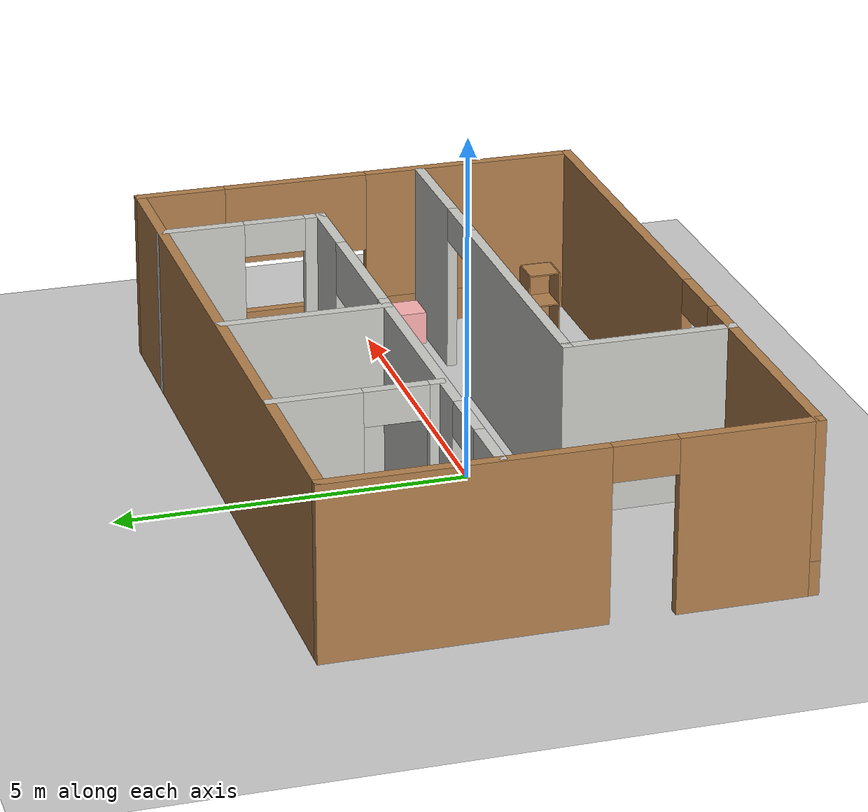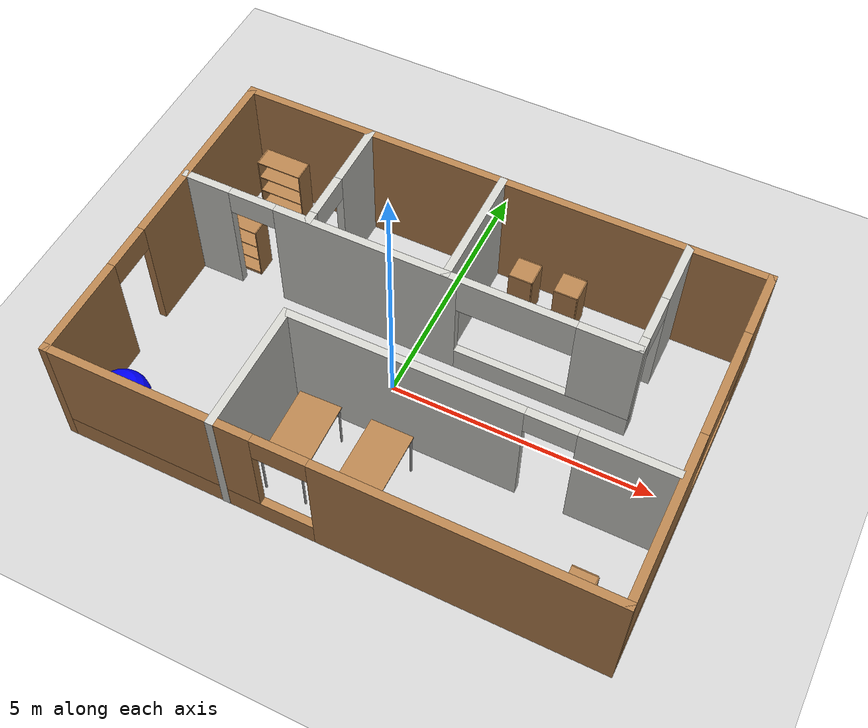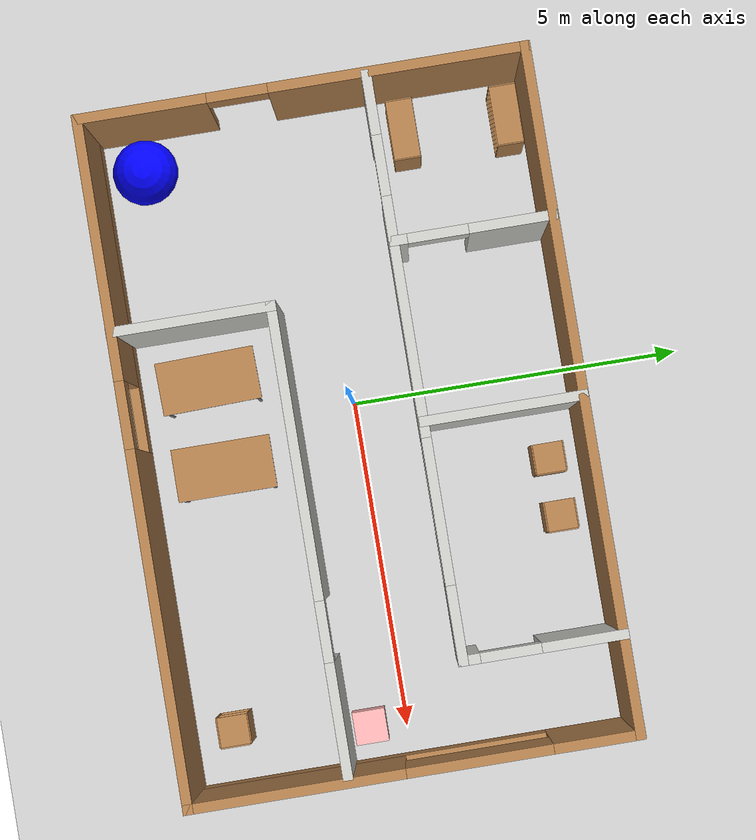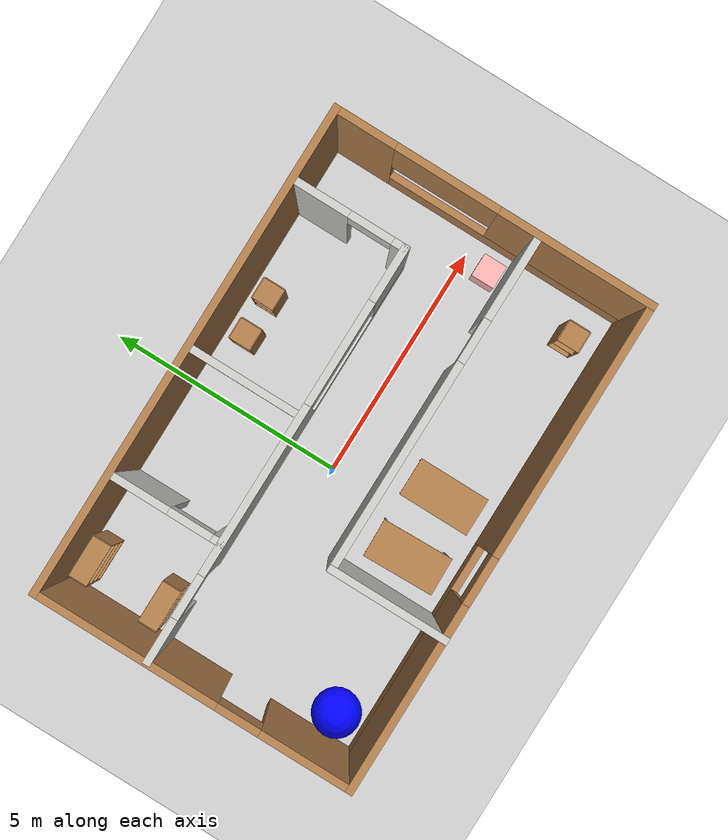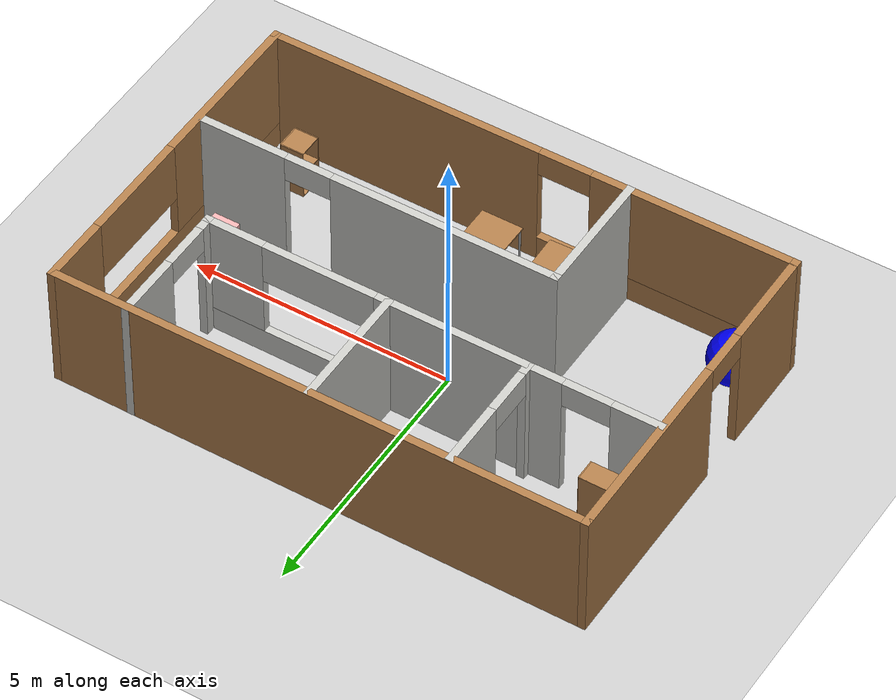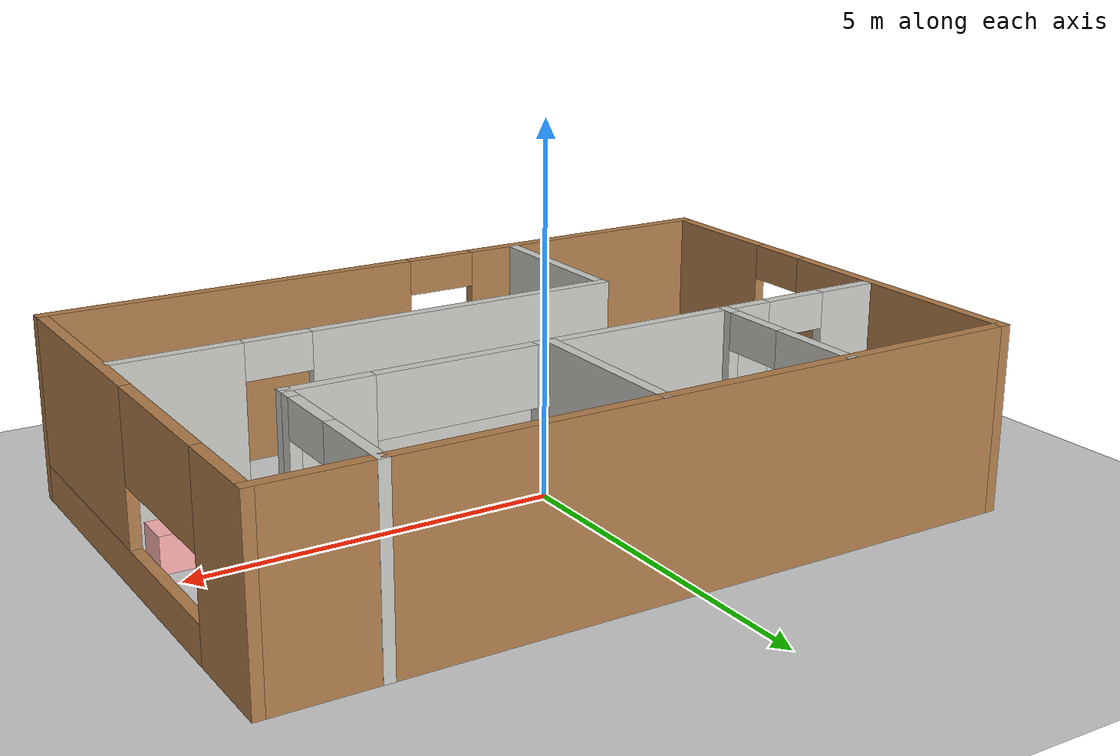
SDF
<sdf version="1.6">
 <world name="default">
  <light name="sun" type="directional">
   <pose>0 0 10 0 -0 0</pose>
   <diffuse>0.8 0.8 0.8 1</diffuse>
   <specular>0.2 0.2 0.2 1</specular>
   <attenuation>
    <range>1000</range>
    <constant>0.9</constant>
    <linear>0.01</linear>
    <quadratic>0.001</quadratic>
   </attenuation>
   <direction>-0.5 0.1 -0.9</direction>
  </light>
  <model name="ground_plane">
   <static>1</static>
   <link name="link">
    <collision name="collision">
     <geometry><plane><normal>0 0 1</normal><size>100 100</size></plane></geometry>
     <surface>
      <contact><collide_bitmask>65535</collide_bitmask></contact>
      <friction><ode><mu>100</mu><mu2>50</mu2></ode></friction>
     </surface>
    </collision>
    <visual name="visual">
     <cast_shadows>0</cast_shadows>
     <geometry><plane><normal>0 0 1</normal><size>100 100</size></plane></geometry>
     <material>
      <script><uri>file://media/materials/scripts/gazebo.material</uri><name>Gazebo/Grey</name></script>
     </material>
    </visual>
   </link>
  </model>
  <gravity>0 0 -9.8</gravity>
  <magnetic_field>6e-06 2.3e-05 -4.2e-05</magnetic_field>
  <atmosphere type="adiabatic"/>
  <physics name="default_physics" default="0" type="ode">
   <max_step_size>0.001</max_step_size>
   <real_time_factor>1</real_time_factor>
   <real_time_update_rate>1000</real_time_update_rate>
  </physics>
  <scene><ambient>0.4 0.4 0.4 1</ambient><background>0.7 0.7 0.7 1</background><shadows>1</shadows></scene>
  <spherical_coordinates>
   <surface_model>EARTH_WGS84</surface_model>
   <latitude_deg>0</latitude_deg>
   <longitude_deg>0</longitude_deg>
   <elevation>0</elevation>
   <heading_deg>0</heading_deg>
  </spherical_coordinates>
  <model name="new_home">
   <pose>0.439115 0.0268 0 0 -0 0</pose>
   <link name="Wall_0">
    <collision name="Wall_0_Collision">
     <geometry><box><size>10.25 0.15 2.5</size></box></geometry>
     <pose>0 0 1.25 0 -0 0</pose>
    </collision>
    <visual name="Wall_0_Visual">
     <pose>0 0 1.25 0 -0 0</pose>
     <geometry><box><size>10.25 0.15 2.5</size></box></geometry>
     <material>
      <script><uri>file://media/materials/scripts/gazebo.material</uri><name>Gazebo/Wood</name></script>
      <ambient>1 1 1 1</ambient>
     </material>
     <meta><layer>0</layer></meta>
    </visual>
    <pose>0 3.30103 0 0 -0 0</pose>
   </link>
   <link name="Wall_1">
    <pose>5.05 0.001029 0 0 0 -1.5708</pose>
    <visual name="Wall_1_Visual_0">
     <pose>-2.70664 0 1.25 0 -0 0</pose>
     <geometry><box><size>1.33673 0.15 2.5</size></box></geometry>
     <material>
      <script><uri>file://media/materials/scripts/gazebo.material</uri><name>Gazebo/Wood</name></script>
      <ambient>1 1 1 1</ambient>
     </material>
     <meta><layer>0</layer></meta>
    </visual>
    <collision name="Wall_1_Collision_0">
     <geometry><box><size>1.33673 0.15 2.5</size></box></geometry>
     <pose>-2.70664 0 1.25 0 -0 0</pose>
    </collision>
    <visual name="Wall_1_Visual_1">
     <pose>0.668364 0 0.25 0 -0 0</pose>
     <geometry><box><size>5.41327 0.15 0.5</size></box></geometry>
     <material>
      <script><uri>file://media/materials/scripts/gazebo.material</uri><name>Gazebo/Wood</name></script>
      <ambient>1 1 1 1</ambient>
     </material>
     <meta><layer>0</layer></meta>
    </visual>
    <collision name="Wall_1_Collision_1">
     <geometry><box><size>5.41327 0.15 0.5</size></box></geometry>
     <pose>0.668364 0 0.25 0 -0 0</pose>
    </collision>
    <visual name="Wall_1_Visual_2">
     <pose>1.74555 0 1.5 0 -0 0</pose>
     <geometry><box><size>3.25889 0.15 2</size></box></geometry>
     <material>
      <script><uri>file://media/materials/scripts/gazebo.material</uri><name>Gazebo/Wood</name></script>
      <ambient>1 1 1 1</ambient>
     </material>
     <meta><layer>0</layer></meta>
    </visual>
    <collision name="Wall_1_Collision_2">
     <geometry><box><size>3.25889 0.15 2</size></box></geometry>
     <pose>1.74555 0 1.5 0 -0 0</pose>
    </collision>
    <visual name="Wall_1_Visual_3">
     <pose>-0.961081 0 1.9 0 -0 0</pose>
     <geometry><box><size>2.15438 0.15 1.2</size></box></geometry>
     <material>
      <script><uri>file://media/materials/scripts/gazebo.material</uri><name>Gazebo/Wood</name></script>
      <ambient>1 1 1 1</ambient>
     </material>
     <meta><layer>0</layer></meta>
    </visual>
    <collision name="Wall_1_Collision_3">
     <geometry><box><size>2.15438 0.15 1.2</size></box></geometry>
     <pose>-0.961081 0 1.9 0 -0 0</pose>
    </collision>
   </link>
   <link name="Wall_11">
    <pose>-2.55612 2.1252 0 0 0 -1.5708</pose>
    <visual name="Wall_11_Visual_0">
     <pose>-0.583962 0 1.25 0 -0 0</pose>
     <geometry><box><size>1.31008 0.15 2.5</size></box></geometry>
     <material>
      <script><uri>file://media/materials/scripts/gazebo.material</uri><name>Gazebo/CeilingTiled</name></script>
      <ambient>1 1 1 1</ambient>
     </material>
     <meta><layer>0</layer></meta>
    </visual>
    <collision name="Wall_11_Collision_0">
     <geometry><box><size>1.31008 0.15 2.5</size></box></geometry>
     <pose>-0.583962 0 1.25 0 -0 0</pose>
    </collision>
    <visual name="Wall_11_Visual_1">
     <pose>1.10504 0 1.25 0 -0 0</pose>
     <geometry><box><size>0.267924 0.15 2.5</size></box></geometry>
     <material>
      <script><uri>file://media/materials/scripts/gazebo.material</uri><name>Gazebo/CeilingTiled</name></script>
      <ambient>1 1 1 1</ambient>
     </material>
     <meta><layer>0</layer></meta>
    </visual>
    <collision name="Wall_11_Collision_1">
     <geometry><box><size>0.267924 0.15 2.5</size></box></geometry>
     <pose>1.10504 0 1.25 0 -0 0</pose>
    </collision>
    <visual name="Wall_11_Visual_2">
     <pose>0.521076 0 2.25 0 -0 0</pose>
     <geometry><box><size>0.9 0.15 0.5</size></box></geometry>
     <material>
      <script><uri>file://media/materials/scripts/gazebo.material</uri><name>Gazebo/CeilingTiled</name></script>
      <ambient>1 1 1 1</ambient>
     </material>
     <meta><layer>0</layer></meta>
    </visual>
    <collision name="Wall_11_Collision_2">
     <geometry><box><size>0.9 0.15 0.5</size></box></geometry>
     <pose>0.521076 0 2.25 0 -0 0</pose>
    </collision>
   </link>
   <link name="Wall_13">
    <collision name="Wall_13_Collision">
     <geometry><box><size>2.5 0.15 2.5</size></box></geometry>
     <pose>0 0 1.25 0 -0 0</pose>
    </collision>
    <visual name="Wall_13_Visual">
     <pose>0 0 1.25 0 -0 0</pose>
     <geometry><box><size>2.5 0.15 2.5</size></box></geometry>
     <material>
      <script><uri>file://media/materials/scripts/gazebo.material</uri><name>Gazebo/CeilingTiled</name></script>
      <ambient>1 1 1 1</ambient>
     </material>
     <meta><layer>0</layer></meta>
    </visual>
    <pose>-1.91259 -2.12832 0 0 -0 1.5708</pose>
   </link>
   <link name="Wall_14">
    <pose>1.51241 -0.953315 0 0 -0 0</pose>
    <visual name="Wall_14_Visual_0">
     <pose>-1.30414 0 1.25 0 -0 0</pose>
     <geometry><box><size>4.39172 0.15 2.5</size></box></geometry>
     <material>
      <script><uri>file://media/materials/scripts/gazebo.material</uri><name>Gazebo/CeilingTiled</name></script>
      <ambient>1 1 1 1</ambient>
     </material>
     <meta><layer>0</layer></meta>
    </visual>
    <collision name="Wall_14_Collision_0">
     <geometry><box><size>4.39172 0.15 2.5</size></box></geometry>
     <pose>-1.30414 0 1.25 0 -0 0</pose>
    </collision>
    <visual name="Wall_14_Visual_1">
     <pose>2.64586 0 1.25 0 -0 0</pose>
     <geometry><box><size>1.70828 0.15 2.5</size></box></geometry>
     <material>
      <script><uri>file://media/materials/scripts/gazebo.material</uri><name>Gazebo/CeilingTiled</name></script>
      <ambient>1 1 1 1</ambient>
     </material>
     <meta><layer>0</layer></meta>
    </visual>
    <collision name="Wall_14_Collision_1">
     <geometry><box><size>1.70828 0.15 2.5</size></box></geometry>
     <pose>2.64586 0 1.25 0 -0 0</pose>
    </collision>
    <visual name="Wall_14_Visual_2">
     <pose>1.34172 0 2.25 0 -0 0</pose>
     <geometry><box><size>0.9 0.15 0.5</size></box></geometry>
     <material>
      <script><uri>file://media/materials/scripts/gazebo.material</uri><name>Gazebo/CeilingTiled</name></script>
      <ambient>1 1 1 1</ambient>
     </material>
     <meta><layer>0</layer></meta>
    </visual>
    <collision name="Wall_14_Collision_2">
     <geometry><box><size>0.9 0.15 0.5</size></box></geometry>
     <pose>1.34172 0 2.25 0 -0 0</pose>
    </collision>
   </link>
   <link name="Wall_16">
    <pose>-0.708317 0.953315 0 0 -0 0</pose>
    <visual name="Wall_16_Visual_0">
     <pose>-3.8941 0 1.25 0 -0 0</pose>
     <geometry><box><size>0.961793 0.15 2.5</size></box></geometry>
     <material>
      <script><uri>file://media/materials/scripts/gazebo.material</uri><name>Gazebo/CeilingTiled</name></script>
      <ambient>1 1 1 1</ambient>
     </material>
     <meta><layer>0</layer></meta>
    </visual>
    <collision name="Wall_16_Collision_0">
     <geometry><box><size>0.961793 0.15 2.5</size></box></geometry>
     <pose>-3.8941 0 1.25 0 -0 0</pose>
    </collision>
    <visual name="Wall_16_Visual_1">
     <pose>-0.736766 0 1.25 0 -0 0</pose>
     <geometry><box><size>3.55288 0.15 2.5</size></box></geometry>
     <material>
      <script><uri>file://media/materials/scripts/gazebo.material</uri><name>Gazebo/CeilingTiled</name></script>
      <ambient>1 1 1 1</ambient>
     </material>
     <meta><layer>0</layer></meta>
    </visual>
    <collision name="Wall_16_Collision_1">
     <geometry><box><size>3.55288 0.15 2.5</size></box></geometry>
     <pose>-0.736766 0 1.25 0 -0 0</pose>
    </collision>
    <visual name="Wall_16_Visual_2">
     <pose>2.70734 0 0.25 0 -0 0</pose>
     <geometry><box><size>3.33533 0.15 0.5</size></box></geometry>
     <material>
      <script><uri>file://media/materials/scripts/gazebo.material</uri><name>Gazebo/CeilingTiled</name></script>
      <ambient>1 1 1 1</ambient>
     </material>
     <meta><layer>0</layer></meta>
    </visual>
    <collision name="Wall_16_Collision_2">
     <geometry><box><size>3.33533 0.15 0.5</size></box></geometry>
     <pose>2.70734 0 0.25 0 -0 0</pose>
    </collision>
    <visual name="Wall_16_Visual_3">
     <pose>3.78779 0 1.5 0 -0 0</pose>
     <geometry><box><size>1.17443 0.15 2</size></box></geometry>
     <material>
      <script><uri>file://media/materials/scripts/gazebo.material</uri><name>Gazebo/CeilingTiled</name></script>
      <ambient>1 1 1 1</ambient>
     </material>
     <meta><layer>0</layer></meta>
    </visual>
    <collision name="Wall_16_Collision_3">
     <geometry><box><size>1.17443 0.15 2</size></box></geometry>
     <pose>3.78779 0 1.5 0 -0 0</pose>
    </collision>
    <visual name="Wall_16_Visual_4">
     <pose>2.12012 0 2.1 0 -0 0</pose>
     <geometry><box><size>2.1609 0.15 0.8</size></box></geometry>
     <material>
      <script><uri>file://media/materials/scripts/gazebo.material</uri><name>Gazebo/CeilingTiled</name></script>
      <ambient>1 1 1 1</ambient>
     </material>
     <meta><layer>0</layer></meta>
    </visual>
    <collision name="Wall_16_Collision_4">
     <geometry><box><size>2.1609 0.15 0.8</size></box></geometry>
     <pose>2.12012 0 2.1 0 -0 0</pose>
    </collision>
    <visual name="Wall_16_Visual_5">
     <pose>-2.96321 0 2.25 0 -0 0</pose>
     <geometry><box><size>0.9 0.15 0.5</size></box></geometry>
     <material>
      <script><uri>file://media/materials/scripts/gazebo.material</uri><name>Gazebo/CeilingTiled</name></script>
      <ambient>1 1 1 1</ambient>
     </material>
     <meta><layer>0</layer></meta>
    </visual>
    <collision name="Wall_16_Collision_5">
     <geometry><box><size>0.9 0.15 0.5</size></box></geometry>
     <pose>-2.96321 0 2.25 0 -0 0</pose>
    </collision>
   </link>
   <link name="Wall_17">
    <pose>3.59168 2.12832 0 0 -0 1.5708</pose>
    <visual name="Wall_17_Visual_0">
     <pose>-1.08571 0 1.25 0 -0 0</pose>
     <geometry><box><size>0.328575 0.15 2.5</size></box></geometry>
     <material>
      <script><uri>file://media/materials/scripts/gazebo.material</uri><name>Gazebo/CeilingTiled</name></script>
      <ambient>1 1 1 1</ambient>
     </material>
     <meta><layer>0</layer></meta>
    </visual>
    <collision name="Wall_17_Collision_0">
     <geometry><box><size>0.328575 0.15 2.5</size></box></geometry>
     <pose>-1.08571 0 1.25 0 -0 0</pose>
    </collision>
    <visual name="Wall_17_Visual_1">
     <pose>0.614288 0 1.25 0 -0 0</pose>
     <geometry><box><size>1.27143 0.15 2.5</size></box></geometry>
     <material>
      <script><uri>file://media/materials/scripts/gazebo.material</uri><name>Gazebo/CeilingTiled</name></script>
      <ambient>1 1 1 1</ambient>
     </material>
     <meta><layer>0</layer></meta>
    </visual>
    <collision name="Wall_17_Collision_1">
     <geometry><box><size>1.27143 0.15 2.5</size></box></geometry>
     <pose>0.614288 0 1.25 0 -0 0</pose>
    </collision>
    <visual name="Wall_17_Visual_2">
     <pose>-0.471425 0 2.25 0 -0 0</pose>
     <geometry><box><size>0.9 0.15 0.5</size></box></geometry>
     <material>
      <script><uri>file://media/materials/scripts/gazebo.material</uri><name>Gazebo/CeilingTiled</name></script>
      <ambient>1 1 1 1</ambient>
     </material>
     <meta><layer>0</layer></meta>
    </visual>
    <collision name="Wall_17_Collision_2">
     <geometry><box><size>0.9 0.15 0.5</size></box></geometry>
     <pose>-0.471425 0 2.25 0 -0 0</pose>
    </collision>
   </link>
   <link name="Wall_2">
    <pose>0 -3.29897 0 0 -0 3.14159</pose>
    <visual name="Wall_2_Visual_0">
     <pose>-2.46304 0 1.25 0 -0 0</pose>
     <geometry><box><size>5.32392 0.15 2.5</size></box></geometry>
     <material>
      <script><uri>file://media/materials/scripts/gazebo.material</uri><name>Gazebo/Wood</name></script>
      <ambient>1 1 1 1</ambient>
     </material>
     <meta><layer>0</layer></meta>
    </visual>
    <collision name="Wall_2_Collision_0">
     <geometry><box><size>5.32392 0.15 2.5</size></box></geometry>
     <pose>-2.46304 0 1.25 0 -0 0</pose>
    </collision>
    <visual name="Wall_2_Visual_1">
     <pose>2.66196 0 0.25 0 -0 0</pose>
     <geometry><box><size>4.92608 0.15 0.5</size></box></geometry>
     <material>
      <script><uri>file://media/materials/scripts/gazebo.material</uri><name>Gazebo/Wood</name></script>
      <ambient>1 1 1 1</ambient>
     </material>
     <meta><layer>0</layer></meta>
    </visual>
    <collision name="Wall_2_Collision_1">
     <geometry><box><size>4.92608 0.15 0.5</size></box></geometry>
     <pose>2.66196 0 0.25 0 -0 0</pose>
    </collision>
    <visual name="Wall_2_Visual_2">
     <pose>3.16196 0 1.5 0 -0 0</pose>
     <geometry><box><size>3.92608 0.15 2</size></box></geometry>
     <material>
      <script><uri>file://media/materials/scripts/gazebo.material</uri><name>Gazebo/Wood</name></script>
      <ambient>1 1 1 1</ambient>
     </material>
     <meta><layer>0</layer></meta>
    </visual>
    <collision name="Wall_2_Collision_2">
     <geometry><box><size>3.92608 0.15 2</size></box></geometry>
     <pose>3.16196 0 1.5 0 -0 0</pose>
    </collision>
    <visual name="Wall_2_Visual_3">
     <pose>0.698918 0 2.25 0 -0 0</pose>
     <geometry><box><size>1 0.15 0.5</size></box></geometry>
     <material>
      <script><uri>file://media/materials/scripts/gazebo.material</uri><name>Gazebo/Wood</name></script>
      <ambient>1 1 1 1</ambient>
     </material>
     <meta><layer>0</layer></meta>
    </visual>
    <collision name="Wall_2_Collision_3">
     <geometry><box><size>1 0.15 0.5</size></box></geometry>
     <pose>0.698918 0 2.25 0 -0 0</pose>
    </collision>
   </link>
   <link name="Wall_3">
    <pose>-5.05 0.001029 0 0 -0 1.5708</pose>
    <visual name="Wall_3_Visual_0">
     <pose>-2.38618 0 1.25 0 -0 0</pose>
     <geometry><box><size>1.97763 0.15 2.5</size></box></geometry>
     <material>
      <script><uri>file://media/materials/scripts/gazebo.material</uri><name>Gazebo/Wood</name></script>
      <ambient>1 1 1 1</ambient>
     </material>
     <meta><layer>0</layer></meta>
    </visual>
    <collision name="Wall_3_Collision_0">
     <geometry><box><size>1.97763 0.15 2.5</size></box></geometry>
     <pose>-2.38618 0 1.25 0 -0 0</pose>
    </collision>
    <visual name="Wall_3_Visual_1">
     <pose>1.43882 0 1.25 0 -0 0</pose>
     <geometry><box><size>3.87237 0.15 2.5</size></box></geometry>
     <material>
      <script><uri>file://media/materials/scripts/gazebo.material</uri><name>Gazebo/Wood</name></script>
      <ambient>1 1 1 1</ambient>
     </material>
     <meta><layer>0</layer></meta>
    </visual>
    <collision name="Wall_3_Collision_1">
     <geometry><box><size>3.87237 0.15 2.5</size></box></geometry>
     <pose>1.43882 0 1.25 0 -0 0</pose>
    </collision>
    <visual name="Wall_3_Visual_2">
     <pose>-0.947367 0 2.25 0 -0 0</pose>
     <geometry><box><size>0.9 0.15 0.5</size></box></geometry>
     <material>
      <script><uri>file://media/materials/scripts/gazebo.material</uri><name>Gazebo/Wood</name></script>
      <ambient>1 1 1 1</ambient>
     </material>
     <meta><layer>0</layer></meta>
    </visual>
    <collision name="Wall_3_Collision_2">
     <geometry><box><size>0.9 0.15 0.5</size></box></geometry>
     <pose>-0.947367 0 2.25 0 -0 0</pose>
    </collision>
   </link>
   <link name="Wall_9">
    <collision name="Wall_9_Collision">
     <geometry><box><size>2.48292 0.15 2.5</size></box></geometry>
     <pose>0 0 1.25 0 -0 0</pose>
    </collision>
    <visual name="Wall_9_Visual">
     <pose>0 0 1.25 0 -0 0</pose>
     <geometry><box><size>2.48292 0.15 2.5</size></box></geometry>
     <material>
      <script><uri>file://media/materials/scripts/gazebo.material</uri><name>Gazebo/CeilingTiled</name></script>
      <ambient>1 1 1 1</ambient>
     </material>
     <meta><layer>0</layer></meta>
    </visual>
    <pose>0.093537 2.12777 0 0 0 -1.57058</pose>
   </link>
   <static>1</static>
  </model>
  <model name="cabinet">
   <static>1</static>
   <link name="cabinet_bottom_plate">
    <inertial>
     <pose>0 0 -1 0 -0 0</pose>
     <inertia><ixx>2.05</ixx><ixy>0</ixy><ixz>0</ixz><iyy>2.05</iyy><iyz>0</iyz><izz>2.05</izz></inertia>
     <mass>25</mass>
    </inertial>
    <collision name="cabinet_bottom_plate_geom">
     <pose>0 0 0.01 0 -0 0</pose>
     <geometry><box><size>0.45 0.45 0.02</size></box></geometry>
    </collision>
    <visual name="cabinet_bottom_plate_geom_visual">
     <pose>0 0 0.01 0 -0 0</pose>
     <geometry><box><size>0.45 0.45 0.02</size></box></geometry>
     <material>
      <script><uri>file://media/materials/scripts/gazebo.material</uri><name>Gazebo/Wood</name></script>
     </material>
    </visual>
    <collision name="cabinet_bottom_plate_geom_cabinet_back_plate">
     <pose>0.235 0 0.51 0 -0 0</pose>
     <geometry><box><size>0.02 0.45 1.02</size></box></geometry>
    </collision>
    <visual name="cabinet_bottom_plate_geom_cabinet_back_plate_visual">
     <pose>0.235 0 0.51 0 -0 0</pose>
     <geometry><box><size>0.02 0.45 1.02</size></box></geometry>
     <material>
      <script><uri>file://media/materials/scripts/gazebo.material</uri><name>Gazebo/Wood</name></script>
     </material>
    </visual>
    <collision name="cabinet_bottom_plate_geom_cabinet_left_plate">
     <pose>0 0.235 0.51 0 -0 0</pose>
     <geometry><box><size>0.45 0.02 1.02</size></box></geometry>
    </collision>
    <visual name="cabinet_bottom_plate_geom_cabinet_left_plate_visual">
     <pose>0 0.235 0.51 0 -0 0</pose>
     <geometry><box><size>0.45 0.02 1.02</size></box></geometry>
     <material>
      <script><uri>file://media/materials/scripts/gazebo.material</uri><name>Gazebo/Wood</name></script>
     </material>
    </visual>
    <collision name="cabinet_bottom_plate_geom_cabinet_middle_plate">
     <pose>0 0 0.51 0 -0 0</pose>
     <geometry><box><size>0.45 0.45 0.02</size></box></geometry>
    </collision>
    <visual name="cabinet_bottom_plate_geom_cabinet_middle_plate_visual">
     <pose>0 0 0.51 0 -0 0</pose>
     <geometry><box><size>0.45 0.45 0.02</size></box></geometry>
     <material>
      <script><uri>file://media/materials/scripts/gazebo.material</uri><name>Gazebo/Wood</name></script>
     </material>
    </visual>
    <collision name="cabinet_bottom_plate_geom_cabinet_right_plate">
     <pose>0 -0.235 0.51 0 -0 0</pose>
     <geometry><box><size>0.45 0.02 1.02</size></box></geometry>
    </collision>
    <visual name="cabinet_bottom_plate_geom_cabinet_right_plate_visual">
     <pose>0 -0.235 0.51 0 -0 0</pose>
     <geometry><box><size>0.45 0.02 1.02</size></box></geometry>
     <material>
      <script><uri>file://media/materials/scripts/gazebo.material</uri><name>Gazebo/Wood</name></script>
     </material>
    </visual>
    <collision name="cabinet_bottom_plate_geom_cabinet_top_plate">
     <pose>0 0 1.01 0 -0 0</pose>
     <geometry><box><size>0.45 0.45 0.02</size></box></geometry>
    </collision>
    <visual name="cabinet_bottom_plate_geom_cabinet_top_plate_visual">
     <pose>0 0 1.01 0 -0 0</pose>
     <geometry><box><size>0.45 0.45 0.02</size></box></geometry>
     <material>
      <script><uri>file://media/materials/scripts/gazebo.material</uri><name>Gazebo/Wood</name></script>
     </material>
    </visual>
   </link>
   <pose>1.31968 2.77105 0 0 -0 0</pose>
  </model>
  <model name="cabinet_0">
   <static>1</static>
   <link name="cabinet_bottom_plate">
    <inertial>
     <pose>0 0 -1 0 -0 0</pose>
     <inertia><ixx>2.05</ixx><ixy>0</ixy><ixz>0</ixz><iyy>2.05</iyy><iyz>0</iyz><izz>2.05</izz></inertia>
     <mass>25</mass>
    </inertial>
    <collision name="cabinet_bottom_plate_geom">
     <pose>0 0 0.01 0 -0 0</pose>
     <geometry><box><size>0.45 0.45 0.02</size></box></geometry>
    </collision>
    <visual name="cabinet_bottom_plate_geom_visual">
     <pose>0 0 0.01 0 -0 0</pose>
     <geometry><box><size>0.45 0.45 0.02</size></box></geometry>
     <material>
      <script><uri>file://media/materials/scripts/gazebo.material</uri><name>Gazebo/Wood</name></script>
     </material>
    </visual>
    <collision name="cabinet_bottom_plate_geom_cabinet_back_plate">
     <pose>0.235 0 0.51 0 -0 0</pose>
     <geometry><box><size>0.02 0.45 1.02</size></box></geometry>
    </collision>
    <visual name="cabinet_bottom_plate_geom_cabinet_back_plate_visual">
     <pose>0.235 0 0.51 0 -0 0</pose>
     <geometry><box><size>0.02 0.45 1.02</size></box></geometry>
     <material>
      <script><uri>file://media/materials/scripts/gazebo.material</uri><name>Gazebo/Wood</name></script>
     </material>
    </visual>
    <collision name="cabinet_bottom_plate_geom_cabinet_left_plate">
     <pose>0 0.235 0.51 0 -0 0</pose>
     <geometry><box><size>0.45 0.02 1.02</size></box></geometry>
    </collision>
    <visual name="cabinet_bottom_plate_geom_cabinet_left_plate_visual">
     <pose>0 0.235 0.51 0 -0 0</pose>
     <geometry><box><size>0.45 0.02 1.02</size></box></geometry>
     <material>
      <script><uri>file://media/materials/scripts/gazebo.material</uri><name>Gazebo/Wood</name></script>
     </material>
    </visual>
    <collision name="cabinet_bottom_plate_geom_cabinet_middle_plate">
     <pose>0 0 0.51 0 -0 0</pose>
     <geometry><box><size>0.45 0.45 0.02</size></box></geometry>
    </collision>
    <visual name="cabinet_bottom_plate_geom_cabinet_middle_plate_visual">
     <pose>0 0 0.51 0 -0 0</pose>
     <geometry><box><size>0.45 0.45 0.02</size></box></geometry>
     <material>
      <script><uri>file://media/materials/scripts/gazebo.material</uri><name>Gazebo/Wood</name></script>
     </material>
    </visual>
    <collision name="cabinet_bottom_plate_geom_cabinet_right_plate">
     <pose>0 -0.235 0.51 0 -0 0</pose>
     <geometry><box><size>0.45 0.02 1.02</size></box></geometry>
    </collision>
    <visual name="cabinet_bottom_plate_geom_cabinet_right_plate_visual">
     <pose>0 -0.235 0.51 0 -0 0</pose>
     <geometry><box><size>0.45 0.02 1.02</size></box></geometry>
     <material>
      <script><uri>file://media/materials/scripts/gazebo.material</uri><name>Gazebo/Wood</name></script>
     </material>
    </visual>
    <collision name="cabinet_bottom_plate_geom_cabinet_top_plate">
     <pose>0 0 1.01 0 -0 0</pose>
     <geometry><box><size>0.45 0.45 0.02</size></box></geometry>
    </collision>
    <visual name="cabinet_bottom_plate_geom_cabinet_top_plate_visual">
     <pose>0 0 1.01 0 -0 0</pose>
     <geometry><box><size>0.45 0.45 0.02</size></box></geometry>
     <material>
      <script><uri>file://media/materials/scripts/gazebo.material</uri><name>Gazebo/Wood</name></script>
     </material>
    </visual>
   </link>
   <pose>4.58285 -2.56261 0 0 -0 0</pose>
  </model>
  <plugin name="collision_map_creator" filename="libcollision_map_creator.so"/>
  <model name="bookshelf">
   <static>1</static>
   <link name="link">
    <inertial><mass>1</mass></inertial>
    <collision name="back">
     <pose>0 0.005 0.6 0 -0 0</pose>
     <geometry><box><size>0.9 0.01 1.2</size></box></geometry>
    </collision>
    <visual name="visual1">
     <pose>0 0.005 0.6 0 -0 0</pose>
     <geometry><box><size>0.9 0.01 1.2</size></box></geometry>
     <material>
      <script><uri>file://media/materials/scripts/gazebo.material</uri><name>Gazebo/Wood</name></script>
     </material>
    </visual>
    <collision name="left_side">
     <pose>0.45 -0.195 0.6 0 -0 0</pose>
     <geometry><box><size>0.02 0.4 1.2</size></box></geometry>
    </collision>
    <visual name="visual2">
     <pose>0.45 -0.195 0.6 0 -0 0</pose>
     <geometry><box><size>0.02 0.4 1.2</size></box></geometry>
     <material>
      <script><uri>file://media/materials/scripts/gazebo.material</uri><name>Gazebo/Wood</name></script>
     </material>
    </visual>
    <collision name="right_side">
     <pose>-0.45 -0.195 0.6 0 -0 0</pose>
     <geometry><box><size>0.02 0.4 1.2</size></box></geometry>
    </collision>
    <visual name="visual3">
     <pose>-0.45 -0.195 0.6 0 -0 0</pose>
     <geometry><box><size>0.02 0.4 1.2</size></box></geometry>
     <material>
      <script><uri>file://media/materials/scripts/gazebo.material</uri><name>Gazebo/Wood</name></script>
     </material>
    </visual>
    <collision name="bottom">
     <pose>0 -0.195 0.03 0 -0 0</pose>
     <geometry><box><size>0.88 0.4 0.06</size></box></geometry>
    </collision>
    <visual name="visual4">
     <pose>0 -0.195 0.03 0 -0 0</pose>
     <geometry><box><size>0.88 0.4 0.06</size></box></geometry>
     <material>
      <script><uri>file://media/materials/scripts/gazebo.material</uri><name>Gazebo/Wood</name></script>
     </material>
    </visual>
    <collision name="top">
     <pose>0 -0.195 1.19 0 -0 0</pose>
     <geometry><box><size>0.88 0.4 0.02</size></box></geometry>
    </collision>
    <visual name="visual5">
     <pose>0 -0.195 1.19 0 -0 0</pose>
     <geometry><box><size>0.88 0.4 0.02</size></box></geometry>
     <material>
      <script><uri>file://media/materials/scripts/gazebo.material</uri><name>Gazebo/Wood</name></script>
     </material>
    </visual>
    <collision name="low_shelf">
     <pose>0 -0.195 0.43 0 -0 0</pose>
     <geometry><box><size>0.88 0.4 0.02</size></box></geometry>
    </collision>
    <visual name="visual6">
     <pose>0 -0.195 0.43 0 -0 0</pose>
     <geometry><box><size>0.88 0.4 0.02</size></box></geometry>
     <material>
      <script><uri>file://media/materials/scripts/gazebo.material</uri><name>Gazebo/Wood</name></script>
     </material>
    </visual>
    <collision name="high_shelf">
     <pose>0 -0.195 0.8 0 -0 0</pose>
     <geometry><box><size>0.88 0.4 0.02</size></box></geometry>
    </collision>
    <visual name="visual7">
     <pose>0 -0.195 0.8 0 -0 0</pose>
     <geometry><box><size>0.88 0.4 0.02</size></box></geometry>
     <material>
      <script><uri>file://media/materials/scripts/gazebo.material</uri><name>Gazebo/Wood</name></script>
     </material>
    </visual>
   </link>
   <pose>-3.87229 3.16814 0 0 -0 0</pose>
  </model>
  <model name="bookshelf_0">
   <static>1</static>
   <link name="link">
    <inertial><mass>1</mass></inertial>
    <collision name="back">
     <pose>0 0.005 0.6 0 -0 0</pose>
     <geometry><box><size>0.9 0.01 1.2</size></box></geometry>
    </collision>
    <visual name="visual1">
     <pose>0 0.005 0.6 0 -0 0</pose>
     <geometry><box><size>0.9 0.01 1.2</size></box></geometry>
     <material>
      <script><uri>file://media/materials/scripts/gazebo.material</uri><name>Gazebo/Wood</name></script>
     </material>
    </visual>
    <collision name="left_side">
     <pose>0.45 -0.195 0.6 0 -0 0</pose>
     <geometry><box><size>0.02 0.4 1.2</size></box></geometry>
    </collision>
    <visual name="visual2">
     <pose>0.45 -0.195 0.6 0 -0 0</pose>
     <geometry><box><size>0.02 0.4 1.2</size></box></geometry>
     <material>
      <script><uri>file://media/materials/scripts/gazebo.material</uri><name>Gazebo/Wood</name></script>
     </material>
    </visual>
    <collision name="right_side">
     <pose>-0.45 -0.195 0.6 0 -0 0</pose>
     <geometry><box><size>0.02 0.4 1.2</size></box></geometry>
    </collision>
    <visual name="visual3">
     <pose>-0.45 -0.195 0.6 0 -0 0</pose>
     <geometry><box><size>0.02 0.4 1.2</size></box></geometry>
     <material>
      <script><uri>file://media/materials/scripts/gazebo.material</uri><name>Gazebo/Wood</name></script>
     </material>
    </visual>
    <collision name="bottom">
     <pose>0 -0.195 0.03 0 -0 0</pose>
     <geometry><box><size>0.88 0.4 0.06</size></box></geometry>
    </collision>
    <visual name="visual4">
     <pose>0 -0.195 0.03 0 -0 0</pose>
     <geometry><box><size>0.88 0.4 0.06</size></box></geometry>
     <material>
      <script><uri>file://media/materials/scripts/gazebo.material</uri><name>Gazebo/Wood</name></script>
     </material>
    </visual>
    <collision name="top">
     <pose>0 -0.195 1.19 0 -0 0</pose>
     <geometry><box><size>0.88 0.4 0.02</size></box></geometry>
    </collision>
    <visual name="visual5">
     <pose>0 -0.195 1.19 0 -0 0</pose>
     <geometry><box><size>0.88 0.4 0.02</size></box></geometry>
     <material>
      <script><uri>file://media/materials/scripts/gazebo.material</uri><name>Gazebo/Wood</name></script>
     </material>
    </visual>
    <collision name="low_shelf">
     <pose>0 -0.195 0.43 0 -0 0</pose>
     <geometry><box><size>0.88 0.4 0.02</size></box></geometry>
    </collision>
    <visual name="visual6">
     <pose>0 -0.195 0.43 0 -0 0</pose>
     <geometry><box><size>0.88 0.4 0.02</size></box></geometry>
     <material>
      <script><uri>file://media/materials/scripts/gazebo.material</uri><name>Gazebo/Wood</name></script>
     </material>
    </visual>
    <collision name="high_shelf">
     <pose>0 -0.195 0.8 0 -0 0</pose>
     <geometry><box><size>0.88 0.4 0.02</size></box></geometry>
    </collision>
    <visual name="visual7">
     <pose>0 -0.195 0.8 0 -0 0</pose>
     <geometry><box><size>0.88 0.4 0.02</size></box></geometry>
     <material>
      <script><uri>file://media/materials/scripts/gazebo.material</uri><name>Gazebo/Wood</name></script>
     </material>
    </visual>
   </link>
   <pose>-3.90561 1.59959 0 0 -0 0</pose>
  </model>
  <model name="cabinet_0_clone">
   <static>1</static>
   <link name="cabinet_bottom_plate">
    <inertial>
     <pose>0 0 -1 0 -0 0</pose>
     <inertia><ixx>2.05</ixx><ixy>0</ixy><ixz>0</ixz><iyy>2.05</iyy><iyz>0</iyz><izz>2.05</izz></inertia>
     <mass>25</mass>
    </inertial>
    <collision name="cabinet_bottom_plate_geom">
     <pose>0 0 0.01 0 -0 0</pose>
     <geometry><box><size>0.45 0.45 0.02</size></box></geometry>
    </collision>
    <visual name="cabinet_bottom_plate_geom_visual">
     <pose>0 0 0.01 0 -0 0</pose>
     <geometry><box><size>0.45 0.45 0.02</size></box></geometry>
     <material>
      <script><uri>file://media/materials/scripts/gazebo.material</uri><name>Gazebo/Wood</name></script>
     </material>
    </visual>
    <collision name="cabinet_bottom_plate_geom_cabinet_back_plate">
     <pose>0.235 0 0.51 0 -0 0</pose>
     <geometry><box><size>0.02 0.45 1.02</size></box></geometry>
    </collision>
    <visual name="cabinet_bottom_plate_geom_cabinet_back_plate_visual">
     <pose>0.235 0 0.51 0 -0 0</pose>
     <geometry><box><size>0.02 0.45 1.02</size></box></geometry>
     <material>
      <script><uri>file://media/materials/scripts/gazebo.material</uri><name>Gazebo/Wood</name></script>
     </material>
    </visual>
    <collision name="cabinet_bottom_plate_geom_cabinet_left_plate">
     <pose>0 0.235 0.51 0 -0 0</pose>
     <geometry><box><size>0.45 0.02 1.02</size></box></geometry>
    </collision>
    <visual name="cabinet_bottom_plate_geom_cabinet_left_plate_visual">
     <pose>0 0.235 0.51 0 -0 0</pose>
     <geometry><box><size>0.45 0.02 1.02</size></box></geometry>
     <material>
      <script><uri>file://media/materials/scripts/gazebo.material</uri><name>Gazebo/Wood</name></script>
     </material>
    </visual>
    <collision name="cabinet_bottom_plate_geom_cabinet_middle_plate">
     <pose>0 0 0.51 0 -0 0</pose>
     <geometry><box><size>0.45 0.45 0.02</size></box></geometry>
    </collision>
    <visual name="cabinet_bottom_plate_geom_cabinet_middle_plate_visual">
     <pose>0 0 0.51 0 -0 0</pose>
     <geometry><box><size>0.45 0.45 0.02</size></box></geometry>
     <material>
      <script><uri>file://media/materials/scripts/gazebo.material</uri><name>Gazebo/Wood</name></script>
     </material>
    </visual>
    <collision name="cabinet_bottom_plate_geom_cabinet_right_plate">
     <pose>0 -0.235 0.51 0 -0 0</pose>
     <geometry><box><size>0.45 0.02 1.02</size></box></geometry>
    </collision>
    <visual name="cabinet_bottom_plate_geom_cabinet_right_plate_visual">
     <pose>0 -0.235 0.51 0 -0 0</pose>
     <geometry><box><size>0.45 0.02 1.02</size></box></geometry>
     <material>
      <script><uri>file://media/materials/scripts/gazebo.material</uri><name>Gazebo/Wood</name></script>
     </material>
    </visual>
    <collision name="cabinet_bottom_plate_geom_cabinet_top_plate">
     <pose>0 0 1.01 0 -0 0</pose>
     <geometry><box><size>0.45 0.45 0.02</size></box></geometry>
    </collision>
    <visual name="cabinet_bottom_plate_geom_cabinet_top_plate_visual">
     <pose>0 0 1.01 0 -0 0</pose>
     <geometry><box><size>0.45 0.45 0.02</size></box></geometry>
     <material>
      <script><uri>file://media/materials/scripts/gazebo.material</uri><name>Gazebo/Wood</name></script>
     </material>
    </visual>
   </link>
   <pose>2.19654 2.80454 0 0 -0 0</pose>
  </model>
  <model name="table_0">
   <static>1</static>
   <link name="link">
    <collision name="surface">
     <pose>0 0 1 0 -0 0</pose>
     <geometry><box><size>1.5 0.8 0.03</size></box></geometry>
     <surface><friction><ode><mu>0.6</mu><mu2>0.6</mu2></ode></friction></surface>
    </collision>
    <visual name="visual1">
     <pose>0 0 1 0 -0 0</pose>
     <geometry><box><size>1.5 0.8 0.03</size></box></geometry>
     <material>
      <script><uri>file://media/materials/scripts/gazebo.material</uri><name>Gazebo/Wood</name></script>
     </material>
    </visual>
    <collision name="front_left_leg">
     <pose>0.68 0.38 0.5 0 -0 0</pose>
     <geometry><cylinder><radius>0.02</radius><length>1</length></cylinder></geometry>
    </collision>
    <visual name="front_left_leg">
     <pose>0.68 0.38 0.5 0 -0 0</pose>
     <geometry><cylinder><radius>0.02</radius><length>1</length></cylinder></geometry>
     <material>
      <script><uri>file://media/materials/scripts/gazebo.material</uri><name>Gazebo/Grey</name></script>
     </material>
    </visual>
    <collision name="front_right_leg">
     <pose>0.68 -0.38 0.5 0 -0 0</pose>
     <geometry><cylinder><radius>0.02</radius><length>1</length></cylinder></geometry>
    </collision>
    <visual name="front_right_leg">
     <pose>0.68 -0.38 0.5 0 -0 0</pose>
     <geometry><cylinder><radius>0.02</radius><length>1</length></cylinder></geometry>
     <material>
      <script><uri>file://media/materials/scripts/gazebo.material</uri><name>Gazebo/Grey</name></script>
     </material>
    </visual>
    <collision name="back_right_leg">
     <pose>-0.68 -0.38 0.5 0 -0 0</pose>
     <geometry><cylinder><radius>0.02</radius><length>1</length></cylinder></geometry>
    </collision>
    <visual name="back_right_leg">
     <pose>-0.68 -0.38 0.5 0 -0 0</pose>
     <geometry><cylinder><radius>0.02</radius><length>1</length></cylinder></geometry>
     <material>
      <script><uri>file://media/materials/scripts/gazebo.material</uri><name>Gazebo/Grey</name></script>
     </material>
    </visual>
    <collision name="back_left_leg">
     <pose>-0.68 0.38 0.5 0 -0 0</pose>
     <geometry><cylinder><radius>0.02</radius><length>1</length></cylinder></geometry>
    </collision>
    <visual name="back_left_leg">
     <pose>-0.68 0.38 0.5 0 -0 0</pose>
     <geometry><cylinder><radius>0.02</radius><length>1</length></cylinder></geometry>
     <material>
      <script><uri>file://media/materials/scripts/gazebo.material</uri><name>Gazebo/Grey</name></script>
     </material>
    </visual>
   </link>
   <pose>-0.653645 -2.10256 0 0 -0 1.59736</pose>
  </model>
  <model name="table_0_clone">
   <static>1</static>
   <link name="link">
    <collision name="surface">
     <pose>0 0 1 0 -0 0</pose>
     <geometry><box><size>1.5 0.8 0.03</size></box></geometry>
     <surface><friction><ode><mu>0.6</mu><mu2>0.6</mu2></ode></friction></surface>
    </collision>
    <visual name="visual1">
     <pose>0 0 1 0 -0 0</pose>
     <geometry><box><size>1.5 0.8 0.03</size></box></geometry>
     <material>
      <script><uri>file://media/materials/scripts/gazebo.material</uri><name>Gazebo/Wood</name></script>
     </material>
    </visual>
    <collision name="front_left_leg">
     <pose>0.68 0.38 0.5 0 -0 0</pose>
     <geometry><cylinder><radius>0.02</radius><length>1</length></cylinder></geometry>
    </collision>
    <visual name="front_left_leg">
     <pose>0.68 0.38 0.5 0 -0 0</pose>
     <geometry><cylinder><radius>0.02</radius><length>1</length></cylinder></geometry>
     <material>
      <script><uri>file://media/materials/scripts/gazebo.material</uri><name>Gazebo/Grey</name></script>
     </material>
    </visual>
    <collision name="front_right_leg">
     <pose>0.68 -0.38 0.5 0 -0 0</pose>
     <geometry><cylinder><radius>0.02</radius><length>1</length></cylinder></geometry>
    </collision>
    <visual name="front_right_leg">
     <pose>0.68 -0.38 0.5 0 -0 0</pose>
     <geometry><cylinder><radius>0.02</radius><length>1</length></cylinder></geometry>
     <material>
      <script><uri>file://media/materials/scripts/gazebo.material</uri><name>Gazebo/Grey</name></script>
     </material>
    </visual>
    <collision name="back_right_leg">
     <pose>-0.68 -0.38 0.5 0 -0 0</pose>
     <geometry><cylinder><radius>0.02</radius><length>1</length></cylinder></geometry>
    </collision>
    <visual name="back_right_leg">
     <pose>-0.68 -0.38 0.5 0 -0 0</pose>
     <geometry><cylinder><radius>0.02</radius><length>1</length></cylinder></geometry>
     <material>
      <script><uri>file://media/materials/scripts/gazebo.material</uri><name>Gazebo/Grey</name></script>
     </material>
    </visual>
    <collision name="back_left_leg">
     <pose>-0.68 0.38 0.5 0 -0 0</pose>
     <geometry><cylinder><radius>0.02</radius><length>1</length></cylinder></geometry>
    </collision>
    <visual name="back_left_leg">
     <pose>-0.68 0.38 0.5 0 -0 0</pose>
     <geometry><cylinder><radius>0.02</radius><length>1</length></cylinder></geometry>
     <material>
      <script><uri>file://media/materials/scripts/gazebo.material</uri><name>Gazebo/Grey</name></script>
     </material>
    </visual>
   </link>
   <pose>0.684377 -2.078 0 0 -0 1.57106</pose>
  </model>
  <model name="unit_box">
   <link name="link">
    <pose>-0.011213 -0.25816 -0 0 -0 0</pose>
    <inertial>
     <mass>1</mass>
     <inertia>
      <ixx>0.166667</ixx>
      <ixy>0</ixy>
      <ixz>0</ixz>
      <iyy>0.166667</iyy>
      <iyz>0</iyz>
      <izz>0.166667</izz>
     </inertia>
    </inertial>
    <visual name="visual">
     <geometry><box><size>0.5 0.5 0.5</size></box></geometry>
     <material>
      <script><name>Gazebo/Grey</name><uri>file://media/materials/scripts/gazebo.material</uri></script>
      <shader type="pixel"><normal_map>__default__</normal_map></shader>
      <ambient>1 0.3 0.3 1</ambient>
      <diffuse>1 0.7 0.7 1</diffuse>
      <specular>1 0.01 0.01 1</specular>
      <emissive>1 0 0 1</emissive>
     </material>
    </visual>
    <collision name="collision">
     <geometry><box><size>0.5 0.5 0.5</size></box></geometry>
     <surface>
      <friction>
       <ode><mu>1</mu><mu2>1</mu2><fdir1>0 0 0</fdir1><slip1>0</slip1><slip2>0</slip2></ode>
       <torsional>
        <coefficient>1</coefficient>
        <patch_radius>0</patch_radius>
        <surface_radius>0</surface_radius>
        <use_patch_radius>1</use_patch_radius>
        <ode><slip>0</slip></ode>
       </torsional>
      </friction>
      <bounce><restitution_coefficient>0</restitution_coefficient><threshold>1e+06</threshold></bounce>
      <contact>
       <collide_without_contact>0</collide_without_contact>
       <collide_without_contact_bitmask>1</collide_without_contact_bitmask>
       <collide_bitmask>1</collide_bitmask>
       <ode>
        <soft_cfm>0</soft_cfm>
        <soft_erp>0.2</soft_erp>
        <kp>1e+13</kp>
        <kd>1</kd>
        <max_vel>0.01</max_vel>
        <min_depth>0</min_depth>
       </ode>
       <bullet>
        <split_impulse>1</split_impulse>
        <split_impulse_penetration_threshold>-0.01</split_impulse_penetration_threshold>
        <soft_cfm>0</soft_cfm>
        <soft_erp>0.2</soft_erp>
        <kp>1e+13</kp>
        <kd>1</kd>
       </bullet>
      </contact>
     </surface>
    </collision>
   </link>
   <static>0</static>
   <pose>4.90819 -0.289963 0.25 0 -0 0</pose>
  </model>
  <model name="unit_sphere">
   <link name="link">
    <inertial>
     <mass>1</mass>
     <inertia><ixx>0.1</ixx><ixy>0</ixy><ixz>0</ixz><iyy>0.1</iyy><iyz>0</iyz><izz>0.1</izz></inertia>
    </inertial>
    <visual name="visual">
     <geometry><sphere><radius>0.5</radius></sphere></geometry>
     <material>
      <script><name>Gazebo/Grey</name><uri>file://media/materials/scripts/gazebo.material</uri></script>
      <shader type="pixel"><normal_map>__default__</normal_map></shader>
      <ambient>0 0 1 1</ambient>
      <diffuse>0 0 1 1</diffuse>
      <specular>0 0 1 1</specular>
      <emissive>0 0 1 1</emissive>
     </material>
    </visual>
    <collision name="collision">
     <geometry><sphere><radius>0.5</radius></sphere></geometry>
     <surface>
      <friction>
       <ode><mu>1</mu><mu2>1</mu2><fdir1>0 0 0</fdir1><slip1>0</slip1><slip2>0</slip2></ode>
       <torsional>
        <coefficient>1</coefficient>
        <patch_radius>0</patch_radius>
        <surface_radius>0</surface_radius>
        <use_patch_radius>1</use_patch_radius>
        <ode><slip>0</slip></ode>
       </torsional>
      </friction>
      <bounce><restitution_coefficient>0</restitution_coefficient><threshold>1e+06</threshold></bounce>
      <contact>
       <collide_without_contact>0</collide_without_contact>
       <collide_without_contact_bitmask>1</collide_without_contact_bitmask>
       <collide_bitmask>1</collide_bitmask>
       <ode>
        <soft_cfm>0</soft_cfm>
        <soft_erp>0.2</soft_erp>
        <kp>1e+13</kp>
        <kd>1</kd>
        <max_vel>0.01</max_vel>
        <min_depth>0</min_depth>
       </ode>
       <bullet>
        <split_impulse>1</split_impulse>
        <split_impulse_penetration_threshold>-0.01</split_impulse_penetration_threshold>
        <soft_cfm>0</soft_cfm>
        <soft_erp>0.2</soft_erp>
        <kp>1e+13</kp>
        <kd>1</kd>
       </bullet>
      </contact>
     </surface>
    </collision>
   </link>
   <static>0</static>
   <pose>-3.98583 -2.57162 0.5 0 -0 0</pose>
  </model>
 </world>
</sdf>
